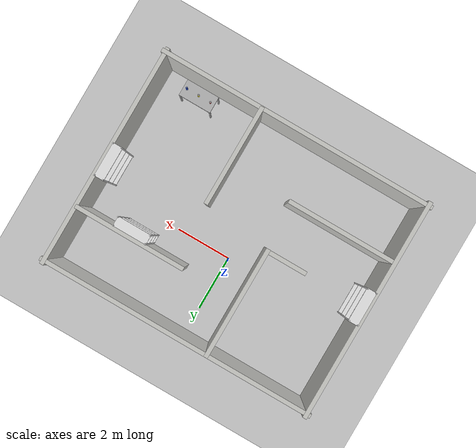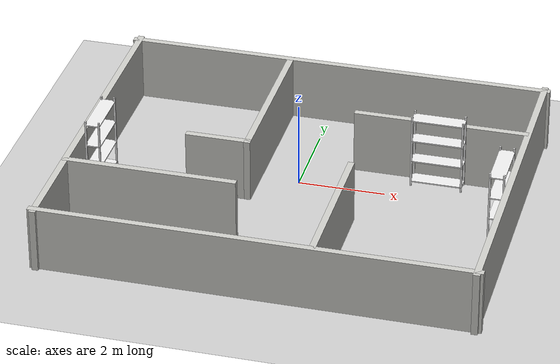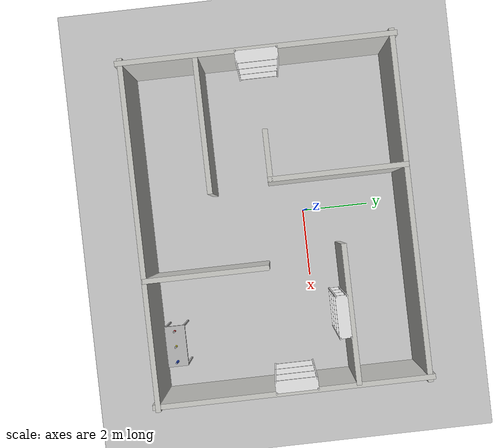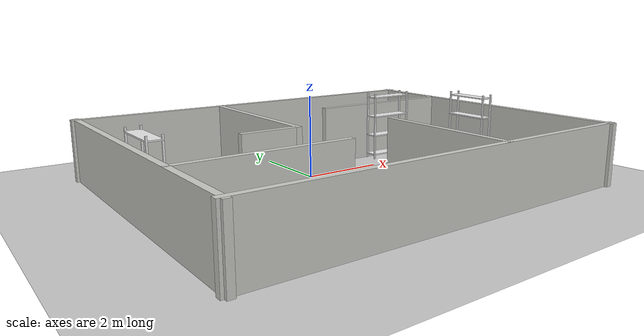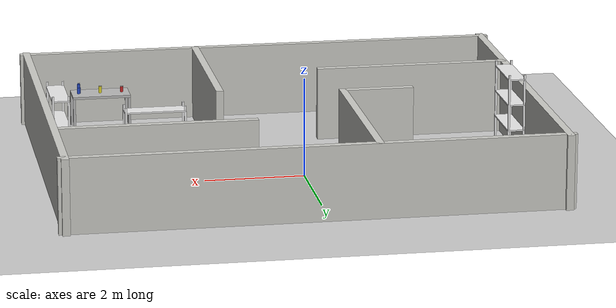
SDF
<?xml version='1.0' encoding='utf-8'?>
<sdf version="1.7">
  <world name="default">
    <light name="sun" type="directional">
      <cast_shadows>1</cast_shadows>
      <pose>0 0 10 0 -0 0</pose>
      <diffuse>0.8 0.8 0.8 1</diffuse>
      <specular>0.2 0.2 0.2 1</specular>
      <attenuation>
        <range>1000</range>
        <constant>0.9</constant>
        <linear>0.01</linear>
        <quadratic>0.001</quadratic>
      </attenuation>
      <direction>-0.5 0.1 -0.9</direction>
      <spot>
        <inner_angle>0</inner_angle>
        <outer_angle>0</outer_angle>
        <falloff>0</falloff>
      </spot>
    </light>
    <model name="ground_plane">
      <static>1</static>
      <link name="link">
        <collision name="collision">
          <geometry>
            <plane>
              <normal>0 0 1</normal>
              <size>100 100</size>
            </plane>
          </geometry>
          <surface>
            <contact>
              <collide_bitmask>65535</collide_bitmask>
              <ode />
            </contact>
            <friction>
              <ode>
                <mu>100</mu>
                <mu2>50</mu2>
              </ode>
              <torsional>
                <ode />
              </torsional>
            </friction>
            <bounce />
          </surface>
          <max_contacts>10</max_contacts>
        </collision>
        <visual name="visual">
          <cast_shadows>0</cast_shadows>
          <geometry>
            <plane>
              <normal>0 0 1</normal>
              <size>100 100</size>
            </plane>
          </geometry>
          <material>
            <script>
              <uri>file://media/materials/scripts/gazebo.material</uri>
              <name>Gazebo/Grey</name>
            </script>
          </material>
        </visual>
        <self_collide>0</self_collide>
        <enable_wind>0</enable_wind>
        <kinematic>0</kinematic>
      </link>
    </model>
    <gravity>0 0 -9.8</gravity>
    <magnetic_field>6e-06 2.3e-05 -4.2e-05</magnetic_field>
    <atmosphere type="adiabatic" />
    <physics type="ode">
      <max_step_size>0.001</max_step_size>
      <real_time_factor>1</real_time_factor>
      <real_time_update_rate>1000</real_time_update_rate>
    </physics>
    <scene>
      <ambient>0.4 0.4 0.4 1</ambient>
      <background>0.7 0.7 0.7 1</background>
      <shadows>1</shadows>
    </scene>
    <wind />
    <spherical_coordinates>
      <surface_model>EARTH_WGS84</surface_model>
      <latitude_deg>0</latitude_deg>
      <longitude_deg>0</longitude_deg>
      <elevation>0</elevation>
      <heading_deg>0</heading_deg>
    </spherical_coordinates>
    <model name="bnt_partition1">
      <pose>0.200898 -0.36337 0 0 -0 0</pose>
      <link name="Wall_1">
        <collision name="Wall_1_Collision">
          <geometry>
            <box>
              <size>7.55 0.148333 1.5</size>
            </box>
          </geometry>
          <pose>0 0 0.75 0 -0 0</pose>
          <max_contacts>10</max_contacts>
          <surface>
            <contact>
              <ode />
            </contact>
            <bounce />
            <friction>
              <torsional>
                <ode />
              </torsional>
              <ode />
            </friction>
          </surface>
        </collision>
        <visual name="Wall_1_Visual">
          <pose>0 0 0.75 0 -0 0</pose>
          <geometry>
            <box>
              <size>8 0.15 1.5</size>
            </box>
          </geometry>
          <material>
            <script>
              <uri>file://media/materials/scripts/gazebo.material</uri>
              <name>Gazebo/CeilingTiled</name>
            </script>
            <ambient>1 1 1 1</ambient>
          </material>
          <meta>
            <layer>0</layer>
          </meta>
        </visual>
        <pose>-4.855 -0.535 0 0 -0 -1.5708</pose>
        <self_collide>0</self_collide>
        <enable_wind>0</enable_wind>
        <kinematic>0</kinematic>
      </link>
      <link name="Wall_11">
        <collision name="Wall_11_Collision">
          <geometry>
            <box>
              <size>3.704584 0.15 1.5</size>
            </box>
          </geometry>
          <pose>0 0 0.75 0 -0 0</pose>
          <max_contacts>10</max_contacts>
          <surface>
            <contact>
              <ode />
            </contact>
            <bounce />
            <friction>
              <torsional>
                <ode />
              </torsional>
              <ode />
            </friction>
          </surface>
        </collision>
        <visual name="Wall_11_Visual">
          <pose>0 0 0.75 0 -0 0</pose>
          <geometry>
            <box>
              <size>4 0.15 1.5</size>
            </box>
          </geometry>
          <material>
            <script>
              <uri>file://media/materials/scripts/gazebo.material</uri>
              <name>Gazebo/CeilingTiled</name>
            </script>
            <ambient>1 1 1 1</ambient>
          </material>
          <meta>
            <layer>0</layer>
          </meta>
        </visual>
        <pose>-2.928542 -2.265 0 0 -0 0</pose>
        <self_collide>0</self_collide>
        <enable_wind>0</enable_wind>
        <kinematic>0</kinematic>
      </link>
      <link name="Wall_13">
        <collision name="Wall_13_Collision">
          <geometry>
            <box>
              <size>4 0.1475 1.5</size>
            </box>
          </geometry>
          <pose>0 0 0.75 0 -0 0</pose>
          <max_contacts>10</max_contacts>
          <surface>
            <contact>
              <ode />
            </contact>
            <bounce />
            <friction>
              <torsional>
                <ode />
              </torsional>
              <ode />
            </friction>
          </surface>
        </collision>
        <visual name="Wall_13_Visual">
          <pose>0 0 0.75 0 -0 0</pose>
          <geometry>
            <box>
              <size>4 0.15 1.5</size>
            </box>
          </geometry>
          <material>
            <script>
              <uri>file://media/materials/scripts/gazebo.material</uri>
              <name>Gazebo/CeilingTiled</name>
            </script>
            <ambient>1 1 1 1</ambient>
          </material>
          <meta>
            <layer>0</layer>
          </meta>
        </visual>
        <pose>-1.15 1.38625 0 0 -0 -1.5708</pose>
        <self_collide>0</self_collide>
        <enable_wind>0</enable_wind>
        <kinematic>0</kinematic>
      </link>
      <link name="Wall_15">
        <collision name="Wall_15_Collision">
          <geometry>
            <box>
              <size>1.5 0.15 1.5</size>
            </box>
          </geometry>
          <pose>0 0 0.75 0 -0 0</pose>
          <max_contacts>10</max_contacts>
          <surface>
            <contact>
              <ode />
            </contact>
            <bounce />
            <friction>
              <torsional>
                <ode />
              </torsional>
              <ode />
            </friction>
          </surface>
        </collision>
        <visual name="Wall_15_Visual">
          <pose>0 0 0.75 0 -0 0</pose>
          <geometry>
            <box>
              <size>1.5 0.15 1.5</size>
            </box>
          </geometry>
          <material>
            <script>
              <uri>file://media/materials/scripts/gazebo.material</uri>
              <name>Gazebo/CeilingTiled</name>
            </script>
            <ambient>1 1 1 1</ambient>
          </material>
          <meta>
            <layer>0</layer>
          </meta>
        </visual>
        <pose>-1.83 -0.535 0 0 -0 3.14159</pose>
        <self_collide>0</self_collide>
        <enable_wind>0</enable_wind>
        <kinematic>0</kinematic>
      </link>
      <link name="Wall_17">
        <collision name="Wall_17_Collision">
          <geometry>
            <box>
              <size>3.985 0.15 1.5</size>
            </box>
          </geometry>
          <pose>0 0 0.75 0 -0 0</pose>
          <max_contacts>10</max_contacts>
          <surface>
            <contact>
              <ode />
            </contact>
            <bounce />
            <friction>
              <torsional>
                <ode />
              </torsional>
              <ode />
            </friction>
          </surface>
        </collision>
        <visual name="Wall_17_Visual">
          <pose>0 0 0.75 0 -0 0</pose>
          <geometry>
            <box>
              <size>4 0.15 1.5</size>
            </box>
          </geometry>
          <material>
            <script>
              <uri>file://media/materials/scripts/gazebo.material</uri>
              <name>Gazebo/CeilingTiled</name>
            </script>
            <ambient>1 1 1 1</ambient>
          </material>
          <meta>
            <layer>0</layer>
          </meta>
        </visual>
        <pose>2.8725 1.3125 0 0 -0 3.14159</pose>
        <self_collide>0</self_collide>
        <enable_wind>0</enable_wind>
        <kinematic>0</kinematic>
      </link>
      <link name="Wall_19">
        <collision name="Wall_19_Collision">
          <geometry>
            <box>
              <size>3.6 0.15 1.5</size>
            </box>
          </geometry>
          <pose>0 0 0.75 0 -0 0</pose>
          <max_contacts>10</max_contacts>
          <surface>
            <contact>
              <ode />
            </contact>
            <bounce />
            <friction>
              <torsional>
                <ode />
              </torsional>
              <ode />
            </friction>
          </surface>
        </collision>
        <visual name="Wall_19_Visual">
          <pose>0 0 0.75 0 -0 0</pose>
          <geometry>
            <box>
              <size>3.6 0.15 1.5</size>
            </box>
          </geometry>
          <material>
            <script>
              <uri>file://media/materials/scripts/gazebo.material</uri>
              <name>Gazebo/CeilingTiled</name>
            </script>
            <ambient>1 1 1 1</ambient>
          </material>
          <meta>
            <layer>0</layer>
          </meta>
        </visual>
        <pose>1.31 -2.635 0 0 -0 1.5708</pose>
        <self_collide>0</self_collide>
        <enable_wind>0</enable_wind>
        <kinematic>0</kinematic>
      </link>
      <link name="Wall_3">
        <collision name="Wall_3_Collision">
          <geometry>
            <box>
              <size>9.571667 0.15 1.5</size>
            </box>
          </geometry>
          <pose>0 0 0.75 0 -0 0</pose>
          <max_contacts>10</max_contacts>
          <surface>
            <contact>
              <ode />
            </contact>
            <bounce />
            <friction>
              <torsional>
                <ode />
              </torsional>
              <ode />
            </friction>
          </surface>
        </collision>
        <visual name="Wall_3_Visual">
          <pose>0 0 0.75 0 -0 0</pose>
          <geometry>
            <box>
              <size>10 0.15 1.5</size>
            </box>
          </geometry>
          <material>
            <script>
              <uri>file://media/materials/scripts/gazebo.material</uri>
              <name>Gazebo/CeilingTiled</name>
            </script>
            <ambient>1 1 1 1</ambient>
          </material>
          <meta>
            <layer>0</layer>
          </meta>
        </visual>
        <pose>0.005 -4.385 0 0 -0 0</pose>
        <self_collide>0</self_collide>
        <enable_wind>0</enable_wind>
        <kinematic>0</kinematic>
      </link>
      <link name="Wall_7">
        <collision name="Wall_7_Collision">
          <geometry>
            <box>
              <size>7.55 0.148333 1.5</size>
            </box>
          </geometry>
          <pose>0 0 0.75 0 -0 0</pose>
          <max_contacts>10</max_contacts>
          <surface>
            <contact>
              <ode />
            </contact>
            <bounce />
            <friction>
              <torsional>
                <ode />
              </torsional>
              <ode />
            </friction>
          </surface>
        </collision>
        <visual name="Wall_7_Visual">
          <pose>0 0 0.75 0 -0 0</pose>
          <geometry>
            <box>
              <size>8 0.15 1.5</size>
            </box>
          </geometry>
          <material>
            <script>
              <uri>file://media/materials/scripts/gazebo.material</uri>
              <name>Gazebo/CeilingTiled</name>
            </script>
            <ambient>1 1 1 1</ambient>
          </material>
          <meta>
            <layer>0</layer>
          </meta>
        </visual>
        <pose>4.865 -0.535 0 0 -0 1.5708</pose>
        <self_collide>0</self_collide>
        <enable_wind>0</enable_wind>
        <kinematic>0</kinematic>
      </link>
      <link name="Wall_9">
        <collision name="Wall_9_Collision">
          <geometry>
            <box>
              <size>9.571667 0.15 1.5</size>
            </box>
          </geometry>
          <pose>0 0 0.75 0 -0 0</pose>
          <max_contacts>10</max_contacts>
          <surface>
            <contact>
              <ode />
            </contact>
            <bounce />
            <friction>
              <torsional>
                <ode />
              </torsional>
              <ode />
            </friction>
          </surface>
        </collision>
        <visual name="Wall_9_Visual">
          <pose>0 0 0.75 0 -0 0</pose>
          <geometry>
            <box>
              <size>10 0.15 1.5</size>
            </box>
          </geometry>
          <material>
            <script>
              <uri>file://media/materials/scripts/gazebo.material</uri>
              <name>Gazebo/CeilingTiled</name>
            </script>
            <ambient>1 1 1 1</ambient>
          </material>
          <meta>
            <layer>0</layer>
          </meta>
        </visual>
        <pose>0.005 3.315 0 0 -0 0</pose>
        <self_collide>0</self_collide>
        <enable_wind>0</enable_wind>
        <kinematic>0</kinematic>
      </link>
      <static>1</static>
    </model>
    <gui fullscreen="0">
      <camera name="user_camera">
        <pose>3.84044 -5.69227 16.9328 0 1.37564 1.8522</pose>
        <view_controller>orbit</view_controller>
        <projection_type>perspective</projection_type>
      </camera>
    </gui>
  <model name="desk_bottom_right"><static>true</static><pose>3.590834 -4.21 0 0 0 0</pose><link name="tabletop"><pose>0 0 0.725 0 0 0</pose><collision name="tabletop_collision"><geometry><box><size>1.2 0.6 0.05</size></box></geometry></collision><visual name="tabletop_visual"><geometry><box><size>1.2 0.6 0.05</size></box></geometry></visual></link><link name="leg1"><pose>0.575 0.275 0.35 0 0 0</pose><collision name="leg1_collision"><geometry><box><size>0.05 0.05 0.7</size></box></geometry></collision><visual name="leg1_visual"><geometry><box><size>0.05 0.05 0.7</size></box></geometry></visual></link><link name="leg2"><pose>-0.575 0.275 0.35 0 0 0</pose><collision name="leg2_collision"><geometry><box><size>0.05 0.05 0.7</size></box></geometry></collision><visual name="leg2_visual"><geometry><box><size>0.05 0.05 0.7</size></box></geometry></visual></link><link name="leg3"><pose>0.575 -0.275 0.35 0 0 0</pose><collision name="leg3_collision"><geometry><box><size>0.05 0.05 0.7</size></box></geometry></collision><visual name="leg3_visual"><geometry><box><size>0.05 0.05 0.7</size></box></geometry></visual></link><link name="leg4"><pose>-0.575 -0.275 0.35 0 0 0</pose><collision name="leg4_collision"><geometry><box><size>0.05 0.05 0.7</size></box></geometry></collision><visual name="leg4_visual"><geometry><box><size>0.05 0.05 0.7</size></box></geometry></visual></link></model><model name="oval_rack_1"><static>1</static><pose>-4.394102 -0.898371 0 0 0 -1.5708</pose><link name="rack"><collision name="post1_collision"><pose>0.58 0.155 0.9 0 0 0</pose><geometry><box><size>0.040 0.040 1.800</size></box></geometry><surface><contact /><bounce /><friction /></surface></collision><visual name="post1_visual"><pose>0.58 0.155 0.9 0 0 0</pose><geometry><box><size>0.040 0.040 1.800</size></box></geometry><material><script><uri>file://media/materials/scripts/gazebo.material</uri><name>Gazebo/White</name></script><ambient>1 1 1 1</ambient></material></visual><collision name="post2_collision"><pose>-0.58 0.155 0.9 0 0 0</pose><geometry><box><size>0.040 0.040 1.800</size></box></geometry><surface><contact /><bounce /><friction /></surface></collision><visual name="post2_visual"><pose>-0.58 0.155 0.9 0 0 0</pose><geometry><box><size>0.040 0.040 1.800</size></box></geometry><material><script><uri>file://media/materials/scripts/gazebo.material</uri><name>Gazebo/White</name></script><ambient>1 1 1 1</ambient></material></visual><collision name="post3_collision"><pose>0.58 -0.155 0.9 0 0 0</pose><geometry><box><size>0.040 0.040 1.800</size></box></geometry><surface><contact /><bounce /><friction /></surface></collision><visual name="post3_visual"><pose>0.58 -0.155 0.9 0 0 0</pose><geometry><box><size>0.040 0.040 1.800</size></box></geometry><material><script><uri>file://media/materials/scripts/gazebo.material</uri><name>Gazebo/White</name></script><ambient>1 1 1 1</ambient></material></visual><collision name="post4_collision"><pose>-0.58 -0.155 0.9 0 0 0</pose><geometry><box><size>0.040 0.040 1.800</size></box></geometry><surface><contact /><bounce /><friction /></surface></collision><visual name="post4_visual"><pose>-0.58 -0.155 0.9 0 0 0</pose><geometry><box><size>0.040 0.040 1.800</size></box></geometry><material><script><uri>file://media/materials/scripts/gazebo.material</uri><name>Gazebo/White</name></script><ambient>1 1 1 1</ambient></material></visual><link name="board1"><collision name="board1_collision"><pose>0 0 0.12 0 0 0</pose><geometry><box><size>1.200 0.350 0.030</size></box></geometry><surface><contact /><bounce /><friction /></surface></collision><visual name="board1_visual"><pose>0 0 0.12 0 0 0</pose><geometry><box><size>1.200 0.350 0.030</size></box></geometry><material><script><uri>file://media/materials/scripts/gazebo.material</uri><name>Gazebo/White</name></script><ambient>1 1 1 1</ambient></material></visual></link><link name="board2"><collision name="board2_collision"><pose>0 0 0.646667 0 0 0</pose><geometry><box><size>1.200 0.350 0.030</size></box></geometry><surface><contact /><bounce /><friction /></surface></collision><visual name="board2_visual"><pose>0 0 0.646667 0 0 0</pose><geometry><box><size>1.200 0.350 0.030</size></box></geometry><material><script><uri>file://media/materials/scripts/gazebo.material</uri><name>Gazebo/White</name></script><ambient>1 1 1 1</ambient></material></visual></link><link name="board3"><collision name="board3_collision"><pose>0 0 1.173333 0 0 0</pose><geometry><box><size>1.200 0.350 0.030</size></box></geometry><surface><contact /><bounce /><friction /></surface></collision><visual name="board3_visual"><pose>0 0 1.173333 0 0 0</pose><geometry><box><size>1.200 0.350 0.030</size></box></geometry><material><script><uri>file://media/materials/scripts/gazebo.material</uri><name>Gazebo/White</name></script><ambient>1 1 1 1</ambient></material></visual></link><link name="board4"><collision name="board4_collision"><pose>0 0 1.7 0 0 0</pose><geometry><box><size>1.200 0.350 0.030</size></box></geometry><surface><contact /><bounce /><friction /></surface></collision><visual name="board4_visual"><pose>0 0 1.7 0 0 0</pose><geometry><box><size>1.200 0.350 0.030</size></box></geometry><material><script><uri>file://media/materials/scripts/gazebo.material</uri><name>Gazebo/White</name></script><ambient>1 1 1 1</ambient></material></visual></link><collision name="board1_collision"><pose>0 0 0.12 0 0 0</pose><geometry><box><size>1.200 0.350 0.030</size></box></geometry><surface><contact /><bounce /><friction /></surface></collision><visual name="board1_visual"><pose>0 0 0.12 0 0 0</pose><geometry><box><size>1.200 0.350 0.030</size></box></geometry><material><script><uri>file://media/materials/scripts/gazebo.material</uri><name>Gazebo/White</name></script><ambient>1 1 1 1</ambient></material></visual><collision name="board2_collision"><pose>0 0 0.646667 0 0 0</pose><geometry><box><size>1.200 0.350 0.030</size></box></geometry><surface><contact /><bounce /><friction /></surface></collision><visual name="board2_visual"><pose>0 0 0.646667 0 0 0</pose><geometry><box><size>1.200 0.350 0.030</size></box></geometry><material><script><uri>file://media/materials/scripts/gazebo.material</uri><name>Gazebo/White</name></script><ambient>1 1 1 1</ambient></material></visual><collision name="board3_collision"><pose>0 0 1.173333 0 0 0</pose><geometry><box><size>1.200 0.350 0.030</size></box></geometry><surface><contact /><bounce /><friction /></surface></collision><visual name="board3_visual"><pose>0 0 1.173333 0 0 0</pose><geometry><box><size>1.200 0.350 0.030</size></box></geometry><material><script><uri>file://media/materials/scripts/gazebo.material</uri><name>Gazebo/White</name></script><ambient>1 1 1 1</ambient></material></visual><collision name="board4_collision"><pose>0 0 1.7 0 0 0</pose><geometry><box><size>1.200 0.350 0.030</size></box></geometry><surface><contact /><bounce /><friction /></surface></collision><visual name="board4_visual"><pose>0 0 1.7 0 0 0</pose><geometry><box><size>1.200 0.350 0.030</size></box></geometry><material><script><uri>file://media/materials/scripts/gazebo.material</uri><name>Gazebo/White</name></script><ambient>1 1 1 1</ambient></material></visual></link></model><model name="oval_rack_2"><static>1</static><pose>3.073397 0.68913 0 0 0 3.14159</pose><link name="rack"><collision name="post1_collision"><pose>0.58 0.155 0.9 0 0 0</pose><geometry><box><size>0.040 0.040 1.800</size></box></geometry><surface><contact /><bounce /><friction /></surface></collision><visual name="post1_visual"><pose>0.58 0.155 0.9 0 0 0</pose><geometry><box><size>0.040 0.040 1.800</size></box></geometry><material><script><uri>file://media/materials/scripts/gazebo.material</uri><name>Gazebo/White</name></script><ambient>1 1 1 1</ambient></material></visual><collision name="post2_collision"><pose>-0.58 0.155 0.9 0 0 0</pose><geometry><box><size>0.040 0.040 1.800</size></box></geometry><surface><contact /><bounce /><friction /></surface></collision><visual name="post2_visual"><pose>-0.58 0.155 0.9 0 0 0</pose><geometry><box><size>0.040 0.040 1.800</size></box></geometry><material><script><uri>file://media/materials/scripts/gazebo.material</uri><name>Gazebo/White</name></script><ambient>1 1 1 1</ambient></material></visual><collision name="post3_collision"><pose>0.58 -0.155 0.9 0 0 0</pose><geometry><box><size>0.040 0.040 1.800</size></box></geometry><surface><contact /><bounce /><friction /></surface></collision><visual name="post3_visual"><pose>0.58 -0.155 0.9 0 0 0</pose><geometry><box><size>0.040 0.040 1.800</size></box></geometry><material><script><uri>file://media/materials/scripts/gazebo.material</uri><name>Gazebo/White</name></script><ambient>1 1 1 1</ambient></material></visual><collision name="post4_collision"><pose>-0.58 -0.155 0.9 0 0 0</pose><geometry><box><size>0.040 0.040 1.800</size></box></geometry><surface><contact /><bounce /><friction /></surface></collision><visual name="post4_visual"><pose>-0.58 -0.155 0.9 0 0 0</pose><geometry><box><size>0.040 0.040 1.800</size></box></geometry><material><script><uri>file://media/materials/scripts/gazebo.material</uri><name>Gazebo/White</name></script><ambient>1 1 1 1</ambient></material></visual><link name="board1"><collision name="board1_collision"><pose>0 0 0.12 0 0 0</pose><geometry><box><size>1.200 0.350 0.030</size></box></geometry><surface><contact /><bounce /><friction /></surface></collision><visual name="board1_visual"><pose>0 0 0.12 0 0 0</pose><geometry><box><size>1.200 0.350 0.030</size></box></geometry><material><script><uri>file://media/materials/scripts/gazebo.material</uri><name>Gazebo/White</name></script><ambient>1 1 1 1</ambient></material></visual></link><link name="board2"><collision name="board2_collision"><pose>0 0 0.646667 0 0 0</pose><geometry><box><size>1.200 0.350 0.030</size></box></geometry><surface><contact /><bounce /><friction /></surface></collision><visual name="board2_visual"><pose>0 0 0.646667 0 0 0</pose><geometry><box><size>1.200 0.350 0.030</size></box></geometry><material><script><uri>file://media/materials/scripts/gazebo.material</uri><name>Gazebo/White</name></script><ambient>1 1 1 1</ambient></material></visual></link><link name="board3"><collision name="board3_collision"><pose>0 0 1.173333 0 0 0</pose><geometry><box><size>1.200 0.350 0.030</size></box></geometry><surface><contact /><bounce /><friction /></surface></collision><visual name="board3_visual"><pose>0 0 1.173333 0 0 0</pose><geometry><box><size>1.200 0.350 0.030</size></box></geometry><material><script><uri>file://media/materials/scripts/gazebo.material</uri><name>Gazebo/White</name></script><ambient>1 1 1 1</ambient></material></visual></link><link name="board4"><collision name="board4_collision"><pose>0 0 1.7 0 0 0</pose><geometry><box><size>1.200 0.350 0.030</size></box></geometry><surface><contact /><bounce /><friction /></surface></collision><visual name="board4_visual"><pose>0 0 1.7 0 0 0</pose><geometry><box><size>1.200 0.350 0.030</size></box></geometry><material><script><uri>file://media/materials/scripts/gazebo.material</uri><name>Gazebo/White</name></script><ambient>1 1 1 1</ambient></material></visual></link><collision name="board1_collision"><pose>0 0 0.12 0 0 0</pose><geometry><box><size>1.200 0.350 0.030</size></box></geometry><surface><contact /><bounce /><friction /></surface></collision><visual name="board1_visual"><pose>0 0 0.12 0 0 0</pose><geometry><box><size>1.200 0.350 0.030</size></box></geometry><material><script><uri>file://media/materials/scripts/gazebo.material</uri><name>Gazebo/White</name></script><ambient>1 1 1 1</ambient></material></visual><collision name="board2_collision"><pose>0 0 0.646667 0 0 0</pose><geometry><box><size>1.200 0.350 0.030</size></box></geometry><surface><contact /><bounce /><friction /></surface></collision><visual name="board2_visual"><pose>0 0 0.646667 0 0 0</pose><geometry><box><size>1.200 0.350 0.030</size></box></geometry><material><script><uri>file://media/materials/scripts/gazebo.material</uri><name>Gazebo/White</name></script><ambient>1 1 1 1</ambient></material></visual><collision name="board3_collision"><pose>0 0 1.173333 0 0 0</pose><geometry><box><size>1.200 0.350 0.030</size></box></geometry><surface><contact /><bounce /><friction /></surface></collision><visual name="board3_visual"><pose>0 0 1.173333 0 0 0</pose><geometry><box><size>1.200 0.350 0.030</size></box></geometry><material><script><uri>file://media/materials/scripts/gazebo.material</uri><name>Gazebo/White</name></script><ambient>1 1 1 1</ambient></material></visual><collision name="board4_collision"><pose>0 0 1.7 0 0 0</pose><geometry><box><size>1.200 0.350 0.030</size></box></geometry><surface><contact /><bounce /><friction /></surface></collision><visual name="board4_visual"><pose>0 0 1.7 0 0 0</pose><geometry><box><size>1.200 0.350 0.030</size></box></geometry><material><script><uri>file://media/materials/scripts/gazebo.material</uri><name>Gazebo/White</name></script><ambient>1 1 1 1</ambient></material></visual></link></model><model name="oval_rack_3"><static>1</static><pose>4.805898 -0.8 0 0 0 1.5708</pose><link name="rack"><collision name="post1_collision"><pose>0.58 0.155 0.9 0 0 0</pose><geometry><box><size>0.040 0.040 1.800</size></box></geometry><surface><contact /><bounce /><friction /></surface></collision><visual name="post1_visual"><pose>0.58 0.155 0.9 0 0 0</pose><geometry><box><size>0.040 0.040 1.800</size></box></geometry><material><script><uri>file://media/materials/scripts/gazebo.material</uri><name>Gazebo/White</name></script><ambient>1 1 1 1</ambient></material></visual><collision name="post2_collision"><pose>-0.58 0.155 0.9 0 0 0</pose><geometry><box><size>0.040 0.040 1.800</size></box></geometry><surface><contact /><bounce /><friction /></surface></collision><visual name="post2_visual"><pose>-0.58 0.155 0.9 0 0 0</pose><geometry><box><size>0.040 0.040 1.800</size></box></geometry><material><script><uri>file://media/materials/scripts/gazebo.material</uri><name>Gazebo/White</name></script><ambient>1 1 1 1</ambient></material></visual><collision name="post3_collision"><pose>0.58 -0.155 0.9 0 0 0</pose><geometry><box><size>0.040 0.040 1.800</size></box></geometry><surface><contact /><bounce /><friction /></surface></collision><visual name="post3_visual"><pose>0.58 -0.155 0.9 0 0 0</pose><geometry><box><size>0.040 0.040 1.800</size></box></geometry><material><script><uri>file://media/materials/scripts/gazebo.material</uri><name>Gazebo/White</name></script><ambient>1 1 1 1</ambient></material></visual><collision name="post4_collision"><pose>-0.58 -0.155 0.9 0 0 0</pose><geometry><box><size>0.040 0.040 1.800</size></box></geometry><surface><contact /><bounce /><friction /></surface></collision><visual name="post4_visual"><pose>-0.58 -0.155 0.9 0 0 0</pose><geometry><box><size>0.040 0.040 1.800</size></box></geometry><material><script><uri>file://media/materials/scripts/gazebo.material</uri><name>Gazebo/White</name></script><ambient>1 1 1 1</ambient></material></visual><link name="board1"><collision name="board1_collision"><pose>0 0 0.12 0 0 0</pose><geometry><box><size>1.200 0.350 0.030</size></box></geometry><surface><contact /><bounce /><friction /></surface></collision><visual name="board1_visual"><pose>0 0 0.12 0 0 0</pose><geometry><box><size>1.200 0.350 0.030</size></box></geometry><material><script><uri>file://media/materials/scripts/gazebo.material</uri><name>Gazebo/White</name></script><ambient>1 1 1 1</ambient></material></visual></link><link name="board2"><collision name="board2_collision"><pose>0 0 0.646667 0 0 0</pose><geometry><box><size>1.200 0.350 0.030</size></box></geometry><surface><contact /><bounce /><friction /></surface></collision><visual name="board2_visual"><pose>0 0 0.646667 0 0 0</pose><geometry><box><size>1.200 0.350 0.030</size></box></geometry><material><script><uri>file://media/materials/scripts/gazebo.material</uri><name>Gazebo/White</name></script><ambient>1 1 1 1</ambient></material></visual></link><link name="board3"><collision name="board3_collision"><pose>0 0 1.173333 0 0 0</pose><geometry><box><size>1.200 0.350 0.030</size></box></geometry><surface><contact /><bounce /><friction /></surface></collision><visual name="board3_visual"><pose>0 0 1.173333 0 0 0</pose><geometry><box><size>1.200 0.350 0.030</size></box></geometry><material><script><uri>file://media/materials/scripts/gazebo.material</uri><name>Gazebo/White</name></script><ambient>1 1 1 1</ambient></material></visual></link><link name="board4"><collision name="board4_collision"><pose>0 0 1.7 0 0 0</pose><geometry><box><size>1.200 0.350 0.030</size></box></geometry><surface><contact /><bounce /><friction /></surface></collision><visual name="board4_visual"><pose>0 0 1.7 0 0 0</pose><geometry><box><size>1.200 0.350 0.030</size></box></geometry><material><script><uri>file://media/materials/scripts/gazebo.material</uri><name>Gazebo/White</name></script><ambient>1 1 1 1</ambient></material></visual></link><collision name="board1_collision"><pose>0 0 0.12 0 0 0</pose><geometry><box><size>1.200 0.350 0.030</size></box></geometry><surface><contact /><bounce /><friction /></surface></collision><visual name="board1_visual"><pose>0 0 0.12 0 0 0</pose><geometry><box><size>1.200 0.350 0.030</size></box></geometry><material><script><uri>file://media/materials/scripts/gazebo.material</uri><name>Gazebo/White</name></script><ambient>1 1 1 1</ambient></material></visual><collision name="board2_collision"><pose>0 0 0.646667 0 0 0</pose><geometry><box><size>1.200 0.350 0.030</size></box></geometry><surface><contact /><bounce /><friction /></surface></collision><visual name="board2_visual"><pose>0 0 0.646667 0 0 0</pose><geometry><box><size>1.200 0.350 0.030</size></box></geometry><material><script><uri>file://media/materials/scripts/gazebo.material</uri><name>Gazebo/White</name></script><ambient>1 1 1 1</ambient></material></visual><collision name="board3_collision"><pose>0 0 1.173333 0 0 0</pose><geometry><box><size>1.200 0.350 0.030</size></box></geometry><surface><contact /><bounce /><friction /></surface></collision><visual name="board3_visual"><pose>0 0 1.173333 0 0 0</pose><geometry><box><size>1.200 0.350 0.030</size></box></geometry><material><script><uri>file://media/materials/scripts/gazebo.material</uri><name>Gazebo/White</name></script><ambient>1 1 1 1</ambient></material></visual><collision name="board4_collision"><pose>0 0 1.7 0 0 0</pose><geometry><box><size>1.200 0.350 0.030</size></box></geometry><surface><contact /><bounce /><friction /></surface></collision><visual name="board4_visual"><pose>0 0 1.7 0 0 0</pose><geometry><box><size>1.200 0.350 0.030</size></box></geometry><material><script><uri>file://media/materials/scripts/gazebo.material</uri><name>Gazebo/White</name></script><ambient>1 1 1 1</ambient></material></visual></link></model><model name="drink_cola_can"><static>1</static><pose>3.140834 -4.21 0.75 0 0 0</pose><link name="body"><collision name="body_collision"><pose>0 0 0.0575 0 0 0</pose><geometry><cylinder><radius>0.033</radius><length>0.115</length></cylinder></geometry><surface><contact /><bounce /><friction /></surface></collision><visual name="body_visual"><pose>0 0 0.0575 0 0 0</pose><geometry><cylinder><radius>0.033</radius><length>0.115</length></cylinder></geometry><material><script><uri>file://media/materials/scripts/gazebo.material</uri><name>Gazebo/Red</name></script><ambient>1 1 1 1</ambient></material></visual><collision name="top_rim_collision"><pose>0 0 0.117 0 0 0</pose><geometry><cylinder><radius>0.034</radius><length>0.004</length></cylinder></geometry><surface><contact /><bounce /><friction /></surface></collision><visual name="top_rim_visual"><pose>0 0 0.117 0 0 0</pose><geometry><cylinder><radius>0.034</radius><length>0.004</length></cylinder></geometry><material><script><uri>file://media/materials/scripts/gazebo.material</uri><name>Gazebo/White</name></script><ambient>1 1 1 1</ambient></material></visual><collision name="bottom_rim_collision"><pose>0 0 -0.002 0 0 0</pose><geometry><cylinder><radius>0.034</radius><length>0.004</length></cylinder></geometry><surface><contact /><bounce /><friction /></surface></collision><visual name="bottom_rim_visual"><pose>0 0 -0.002 0 0 0</pose><geometry><cylinder><radius>0.034</radius><length>0.004</length></cylinder></geometry><material><script><uri>file://media/materials/scripts/gazebo.material</uri><name>Gazebo/White</name></script><ambient>1 1 1 1</ambient></material></visual><collision name="lid_collision"><pose>0 0 0.12 0 0 0</pose><geometry><cylinder><radius>0.032</radius><length>0.002</length></cylinder></geometry><surface><contact /><bounce /><friction /></surface></collision><visual name="lid_visual"><pose>0 0 0.12 0 0 0</pose><geometry><cylinder><radius>0.032</radius><length>0.002</length></cylinder></geometry><material><script><uri>file://media/materials/scripts/gazebo.material</uri><name>Gazebo/Grey</name></script><ambient>1 1 1 1</ambient></material></visual></link></model><model name="drink_beer_can"><static>1</static><pose>3.590834 -4.21 0.75 0 0 0</pose><link name="body"><collision name="body_collision"><pose>0 0 0.07 0 0 0</pose><geometry><cylinder><radius>0.033</radius><length>0.140</length></cylinder></geometry><surface><contact /><bounce /><friction /></surface></collision><visual name="body_visual"><pose>0 0 0.07 0 0 0</pose><geometry><cylinder><radius>0.033</radius><length>0.140</length></cylinder></geometry><material><script><uri>file://media/materials/scripts/gazebo.material</uri><name>Gazebo/Yellow</name></script><ambient>1 1 1 1</ambient></material></visual><collision name="top_rim_collision"><pose>0 0 0.142 0 0 0</pose><geometry><cylinder><radius>0.034</radius><length>0.004</length></cylinder></geometry><surface><contact /><bounce /><friction /></surface></collision><visual name="top_rim_visual"><pose>0 0 0.142 0 0 0</pose><geometry><cylinder><radius>0.034</radius><length>0.004</length></cylinder></geometry><material><script><uri>file://media/materials/scripts/gazebo.material</uri><name>Gazebo/White</name></script><ambient>1 1 1 1</ambient></material></visual><collision name="bottom_rim_collision"><pose>0 0 -0.002 0 0 0</pose><geometry><cylinder><radius>0.034</radius><length>0.004</length></cylinder></geometry><surface><contact /><bounce /><friction /></surface></collision><visual name="bottom_rim_visual"><pose>0 0 -0.002 0 0 0</pose><geometry><cylinder><radius>0.034</radius><length>0.004</length></cylinder></geometry><material><script><uri>file://media/materials/scripts/gazebo.material</uri><name>Gazebo/White</name></script><ambient>1 1 1 1</ambient></material></visual><collision name="lid_collision"><pose>0 0 0.145 0 0 0</pose><geometry><cylinder><radius>0.032</radius><length>0.002</length></cylinder></geometry><surface><contact /><bounce /><friction /></surface></collision><visual name="lid_visual"><pose>0 0 0.145 0 0 0</pose><geometry><cylinder><radius>0.032</radius><length>0.002</length></cylinder></geometry><material><script><uri>file://media/materials/scripts/gazebo.material</uri><name>Gazebo/Grey</name></script><ambient>1 1 1 1</ambient></material></visual></link></model><model name="drink_water_bottle"><static>1</static><pose>4.040834 -4.21 0.75 0 0 0</pose><link name="body"><collision name="lower_collision"><pose>0 0 0.065 0 0 0</pose><geometry><cylinder><radius>0.035</radius><length>0.130</length></cylinder></geometry><surface><contact /><bounce /><friction /></surface></collision><visual name="lower_visual"><pose>0 0 0.065 0 0 0</pose><geometry><cylinder><radius>0.035</radius><length>0.130</length></cylinder></geometry><material><script><uri>file://media/materials/scripts/gazebo.material</uri><name>Gazebo/Blue</name></script><ambient>1 1 1 1</ambient></material></visual><collision name="upper_collision"><pose>0 0 0.165 0 0 0</pose><geometry><cylinder><radius>0.030</radius><length>0.070</length></cylinder></geometry><surface><contact /><bounce /><friction /></surface></collision><visual name="upper_visual"><pose>0 0 0.165 0 0 0</pose><geometry><cylinder><radius>0.030</radius><length>0.070</length></cylinder></geometry><material><script><uri>file://media/materials/scripts/gazebo.material</uri><name>Gazebo/Blue</name></script><ambient>1 1 1 1</ambient></material></visual><collision name="neck_collision"><pose>0 0 0.2075 0 0 0</pose><geometry><cylinder><radius>0.016</radius><length>0.015</length></cylinder></geometry><surface><contact /><bounce /><friction /></surface></collision><visual name="neck_visual"><pose>0 0 0.2075 0 0 0</pose><geometry><cylinder><radius>0.016</radius><length>0.015</length></cylinder></geometry><material><script><uri>file://media/materials/scripts/gazebo.material</uri><name>Gazebo/Blue</name></script><ambient>1 1 1 1</ambient></material></visual><collision name="cap_collision"><pose>0 0 0.2225 0 0 0</pose><geometry><cylinder><radius>0.018</radius><length>0.015</length></cylinder></geometry><surface><contact /><bounce /><friction /></surface></collision><visual name="cap_visual"><pose>0 0 0.2225 0 0 0</pose><geometry><cylinder><radius>0.018</radius><length>0.015</length></cylinder></geometry><material><script><uri>file://media/materials/scripts/gazebo.material</uri><name>Gazebo/White</name></script><ambient>1 1 1 1</ambient></material></visual></link></model></world>
</sdf>
